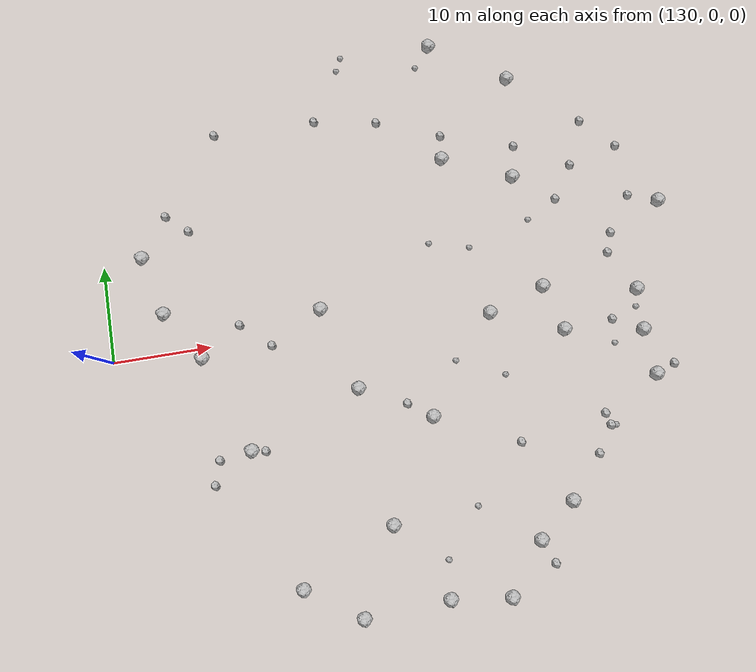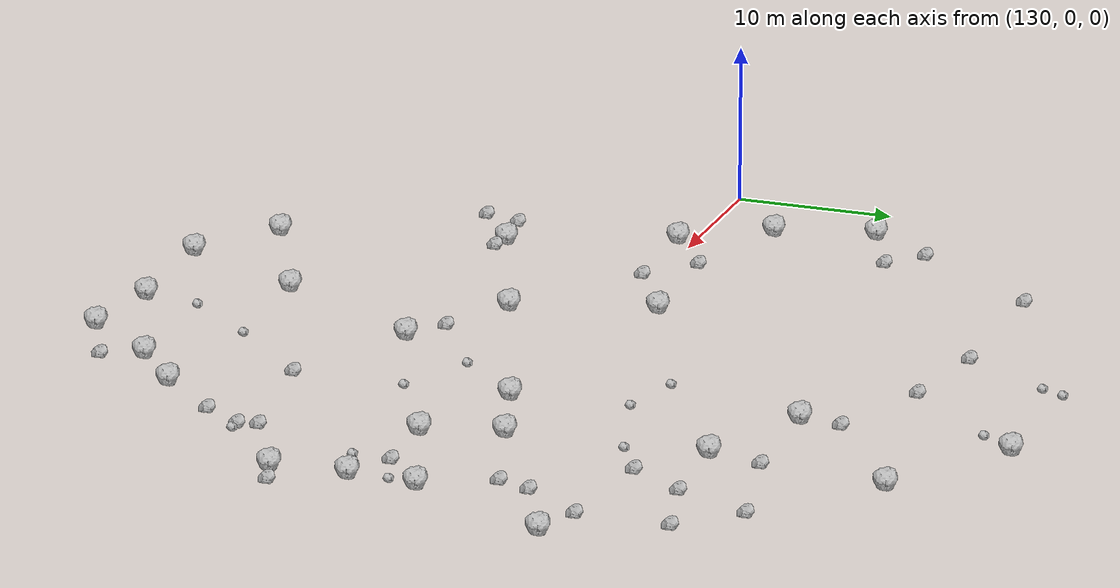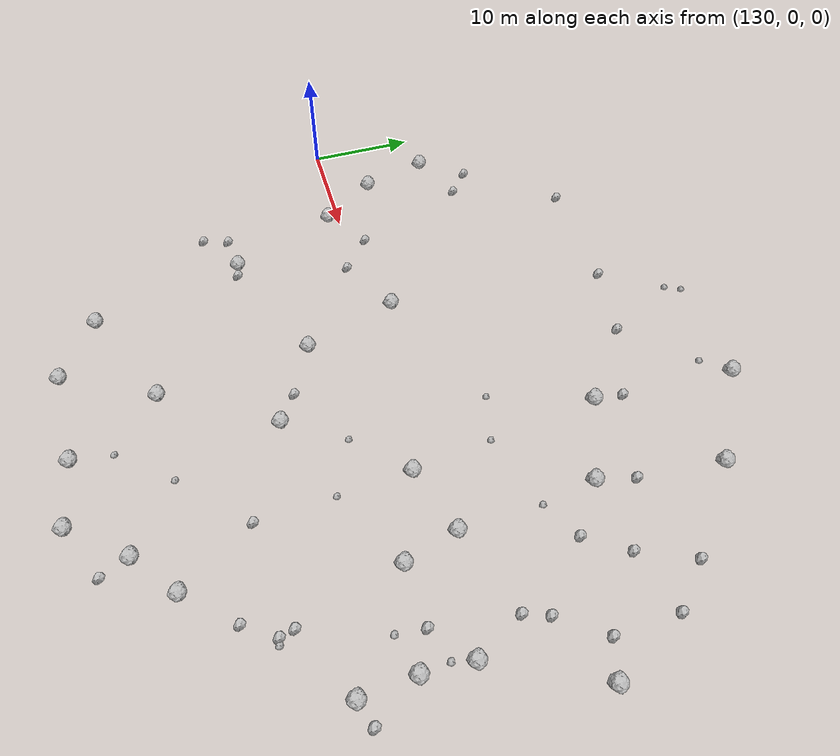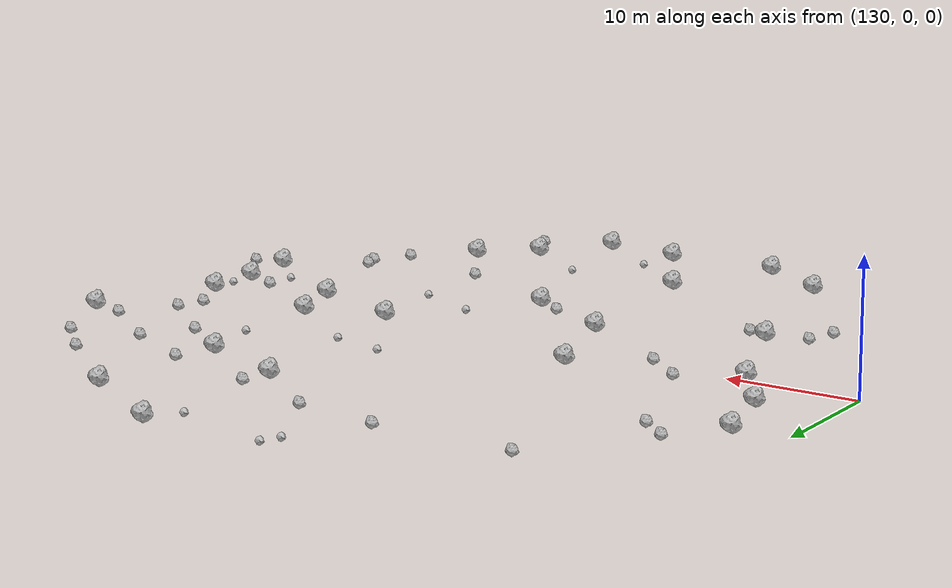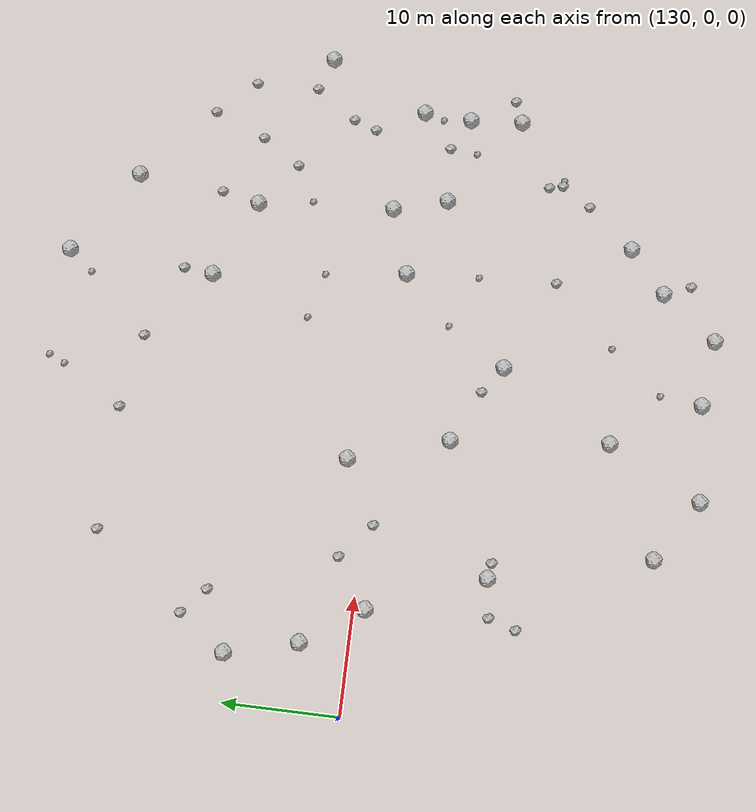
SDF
<sdf version="1.6">
 <world name="default">
  <include><uri>model://sun</uri></include>
  <model name="rock1_4_2">
   <include><uri>model://rock1</uri><pose>173.35676461586243 -20.821877392341133 0.5 0 0 0</pose></include>
  </model>
  <model name="rock1_4_3">
   <include><uri>model://rock1</uri><pose>168.77195513808837 -1.1026819211225813 0.5 0 0 0</pose></include>
  </model>
  <model name="rock1_4_4">
   <include><uri>model://rock1</uri><pose>139.0588941453659 -1.009824280169834 0.5 0 0 0</pose></include>
  </model>
  <model name="rock1_4_5">
   <include><uri>model://rock1</uri><pose>166.7420772614346 16.034924336985917 0.5 0 0 0</pose></include>
  </model>
  <model name="rock1_4_6">
   <include><uri>model://rock1</uri><pose>151.64754884284503 2.061770873342816 0.5 0 0 0</pose></include>
  </model>
  <model name="rock1_4_7">
   <include><uri>model://rock1</uri><pose>159.87404871298435 -28.010975867440763 0.5 0 0 0</pose></include>
  </model>
  <model name="rock1_4_8">
   <include><uri>model://rock1</uri><pose>169.55881607592607 -23.970591309255866 0.5 0 0 0</pose></include>
  </model>
  <model name="rock1_4_9">
   <include><uri>model://rock1</uri><pose>146.0434157475139 -24.85514217156618 0.5 0 0 0</pose></include>
  </model>
  <model name="rock1_4_10">
   <include><uri>model://rock1</uri><pose>188.42570880856172 7.871139072088589 0.5 0 0 0</pose></include>
  </model>
  <model name="rock1_4_11">
   <include><uri>model://rock1</uri><pose>165.76111432035992 -28.756969729094628 0.5 0 0 0</pose></include>
  </model>
  <model name="rock1_4_12">
   <include><uri>model://rock1</uri><pose>142.8339406444957 -10.987779519575465 0.5 0 0 0</pose></include>
  </model>
  <model name="rock1_4_13">
   <include><uri>model://rock1</uri><pose>167.5390113638109 28.984665737025267 0.5 0 0 0</pose></include>
  </model>
  <model name="rock1_4_14">
   <include><uri>model://rock1</uri><pose>155.57643965056528 -20.31523914224087 0.5 0 0 0</pose></include>
  </model>
  <model name="rock1_4_15">
   <include><uri>model://rock1</uri><pose>184.1836402430796 -1.0505597350148292 0.5 0 0 0</pose></include>
  </model>
  <model name="rock1_4_16">
   <include><uri>model://rock1</uri><pose>134.1468117762583 10.345057957126286 0.5 0 0 0</pose></include>
  </model>
  <model name="rock1_4_17">
   <include><uri>model://rock1</uri><pose>135.70193053734837 4.149775450286391 0.5 0 0 0</pose></include>
  </model>
  <model name="rock1_4_18">
   <include><uri>model://rock1</uri><pose>154.26523347399623 -6.571208248659598 0.5 0 0 0</pose></include>
  </model>
  <model name="rock1_4_19">
   <include><uri>model://rock1</uri><pose>184.26613816768455 -9.938049138071921 0.5 0 0 0</pose></include>
  </model>
  <model name="rock1_4_20">
   <include><uri>model://rock1</uri><pose>175.96977281727501 -4.000187091661008 0.5 0 0 0</pose></include>
  </model>
  <model name="rock1_4_21">
   <include><uri>model://rock1</uri><pose>183.93109592769864 -5.291878847741586 0.5 0 0 0</pose></include>
  </model>
  <model name="rock1_4_22">
   <include><uri>model://rock1</uri><pose>161.2328003910926 -10.553924973583449 0.5 0 0 0</pose></include>
  </model>
  <model name="rock1_4_23">
   <include><uri>model://rock1</uri><pose>175.26608429162565 23.900289747259436 0.5 0 0 0</pose></include>
  </model>
  <model name="rock1_4_24">
   <include><uri>model://rock1</uri><pose>173.7769101488532 12.880169798696862 0.5 0 0 0</pose></include>
  </model>
  <model name="rock1_4_25">
   <include><uri>model://rock1</uri><pose>151.40031067628144 -28.42092653740821 0.5 0 0 0</pose></include>
  </model>
  <model name="rock1_4_26">
   <include><uri>model://rock1</uri><pose>174.64859067286062 0.7711171178796548 0.5 0 0 0</pose></include>
  </model>
  <model name="rock2_4_0">
   <include><uri>model://rock2</uri><pose>158.85221132509227 -8.854607772354075 0.3 0 0 0</pose></include>
  </model>
  <model name="rock2_4_1">
   <include><uri>model://rock2</uri><pose>177.79304953129923 9.787969051959983 0.3 0 0 0</pose></include>
  </model>
  <model name="rock2_4_2">
   <include><uri>model://rock2</uri><pose>153.89397539755004 22.40783607489029 0.3 0 0 0</pose></include>
  </model>
  <model name="rock2_4_3">
   <include><uri>model://rock2</uri><pose>144.15931114479403 -11.238877780397484 0.3 0 0 0</pose></include>
  </model>
  <model name="rock2_4_4">
   <include><uri>model://rock2</uri><pose>170.52131718361846 -26.389176657108827 0.3 0 0 0</pose></include>
  </model>
  <model name="rock2_4_5">
   <include><uri>model://rock2</uri><pose>186.2805850339118 -9.21002760211649 0.3 0 0 0</pose></include>
  </model>
  <model name="rock2_4_6">
   <include><uri>model://rock2</uri><pose>169.4593750263782 -14.446334209077866 0.3 0 0 0</pose></include>
  </model>
  <model name="rock2_4_7">
   <include><uri>model://rock2</uri><pose>143.2005992096493 1.7787486866186377 0.3 0 0 0</pose></include>
  </model>
  <model name="rock2_4_8">
   <include><uri>model://rock2</uri><pose>160.4798989163658 21.23864757322955 0.3 0 0 0</pose></include>
  </model>
  <model name="rock2_4_9">
   <include><uri>model://rock2</uri><pose>185.40833568236675 8.97111583326857 0.3 0 0 0</pose></include>
  </model>
  <model name="rock2_4_10">
   <include><uri>model://rock2</uri><pose>143.11690303292707 22.5967195231175 0.3 0 0 0</pose></include>
  </model>
  <model name="rock2_4_11">
   <include><uri>model://rock2</uri><pose>138.79808657789928 -13.78579108853318 0.3 0 0 0</pose></include>
  </model>
  <model name="rock2_4_12">
   <include><uri>model://rock2</uri><pose>185.2894815471869 14.572995326336518 0.3 0 0 0</pose></include>
  </model>
  <model name="rock2_4_13">
   <include><uri>model://rock2</uri><pose>146.18831937277227 -0.8305156830708817 0.3 0 0 0</pose></include>
  </model>
  <model name="rock2_4_14">
   <include><uri>model://rock2</uri><pose>176.9144555701219 -16.795196976599374 0.3 0 0 0</pose></include>
  </model>
  <model name="rock2_4_15">
   <include><uri>model://rock2</uri><pose>182.78390058727933 5.2659391774743085 0.3 0 0 0</pose></include>
  </model>
  <model name="rock2_4_16">
   <include><uri>model://rock2</uri><pose>180.0664162083977 13.242559301074131 0.3 0 0 0</pose></include>
  </model>
  <model name="rock2_4_17">
   <include><uri>model://rock2</uri><pose>139.54168782276844 -11.42180075472794 0.3 0 0 0</pose></include>
  </model>
  <model name="rock2_4_18">
   <include><uri>model://rock2</uri><pose>182.0246634312435 3.2055287685021057 0.3 0 0 0</pose></include>
  </model>
  <model name="rock2_4_19">
   <include><uri>model://rock2</uri><pose>139.17733682772777 12.496739056234432 0.3 0 0 0</pose></include>
  </model>
  <model name="rock2_4_20">
   <include><uri>model://rock2</uri><pose>181.0243561282588 -3.7464452663196504 0.3 0 0 0</pose></include>
  </model>
  <model name="rock2_4_21">
   <include><uri>model://rock2</uri><pose>178.63096765998435 -14.21997173689858 0.3 0 0 0</pose></include>
  </model>
  <model name="rock2_4_22">
   <include><uri>model://rock2</uri><pose>182.0828706337751 17.922593248000062 0.3 0 0 0</pose></include>
  </model>
  <model name="rock2_4_23">
   <include><uri>model://rock2</uri><pose>174.55286455585508 16.27006557313998 0.3 0 0 0</pose></include>
  </model>
  <model name="rock2_4_24">
   <include><uri>model://rock2</uri><pose>167.038781651513 18.644367253746644 0.3 0 0 0</pose></include>
  </model>
  <model name="rock2_4_25">
   <include><uri>model://rock2</uri><pose>178.33972068481654 -13.00927738706164 0.3 0 0 0</pose></include>
  </model>
  <model name="rock2_4_26">
   <include><uri>model://rock2</uri><pose>136.97879774556054 14.45718704264413 0.3 0 0 0</pose></include>
  </model>
  <model name="rock3_4_0">
   <include><uri>model://rock3</uri><pose>174.5202781017899 8.01313803040317 0.2 0 0 0</pose></include>
  </model>
  <model name="rock3_4_1">
   <include><uri>model://rock3</uri><pose>157.12953610301048 27.826264077617715 0.2 0 0 0</pose></include>
  </model>
  <model name="rock3_4_2">
   <include><uri>model://rock3</uri><pose>163.78584784623396 7.132167547012301 0.2 0 0 0</pose></include>
  </model>
  <model name="rock3_4_3">
   <include><uri>model://rock3</uri><pose>167.8884204941178 6.047891787617793 0.2 0 0 0</pose></include>
  </model>
  <model name="rock3_4_4">
   <include><uri>model://rock3</uri><pose>169.15013410663568 -7.599919695559517 0.2 0 0 0</pose></include>
  </model>
  <model name="rock3_4_5">
   <include><uri>model://rock3</uri><pose>160.30718128950068 -24.43924395104715 0.2 0 0 0</pose></include>
  </model>
  <model name="rock3_4_6">
   <include><uri>model://rock3</uri><pose>183.71146213960083 -2.8643271124641316 0.2 0 0 0</pose></include>
  </model>
  <model name="rock3_4_7">
   <include><uri>model://rock3</uri><pose>164.43682019460073 -5.397679875320268 0.2 0 0 0</pose></include>
  </model>
  <model name="rock3_4_8">
   <include><uri>model://rock3</uri><pose>165.68791470660676 26.813996477160288 0.2 0 0 0</pose></include>
  </model>
  <model name="rock3_4_9">
   <include><uri>model://rock3</uri><pose>179.1481234649325 -14.339526524480382 0.2 0 0 0</pose></include>
  </model>
  <model name="rock3_4_10">
   <include><uri>model://rock3</uri><pose>157.7988135439754 29.24546305795753 0.2 0 0 0</pose></include>
  </model>
  <model name="rock3_4_11">
   <include><uri>model://rock3</uri><pose>180.77515295613512 -6.213430977063091 0.2 0 0 0</pose></include>
  </model>
  <model name="rock3_4_12">
   <include><uri>model://rock3</uri><pose>164.04131575314733 -19.894210568920347 0.2 0 0 0</pose></include>
  </model>
 </world>
</sdf>
